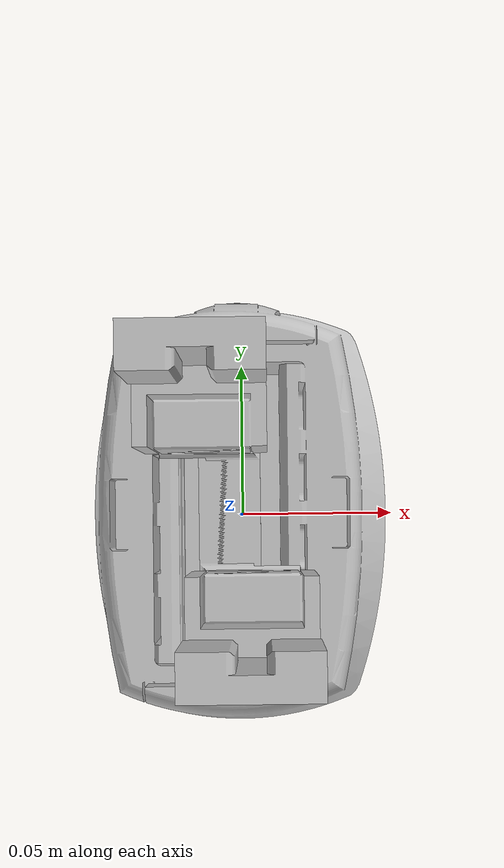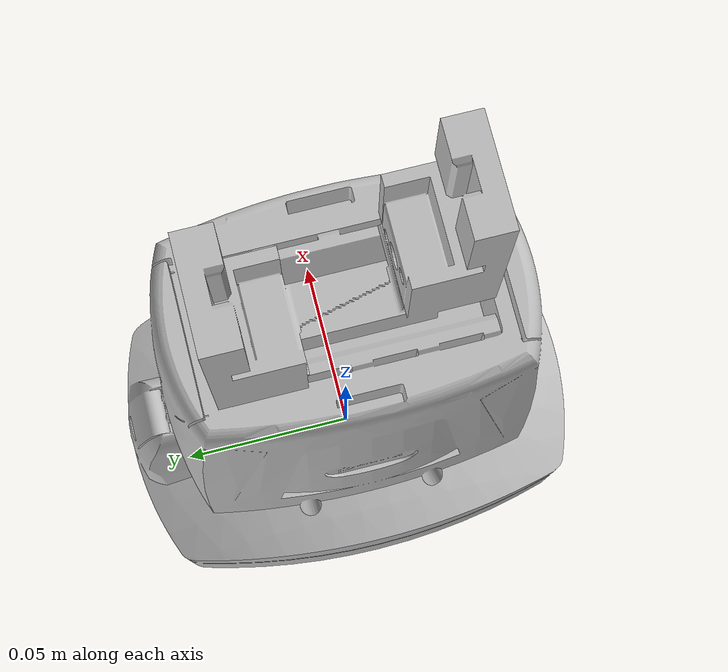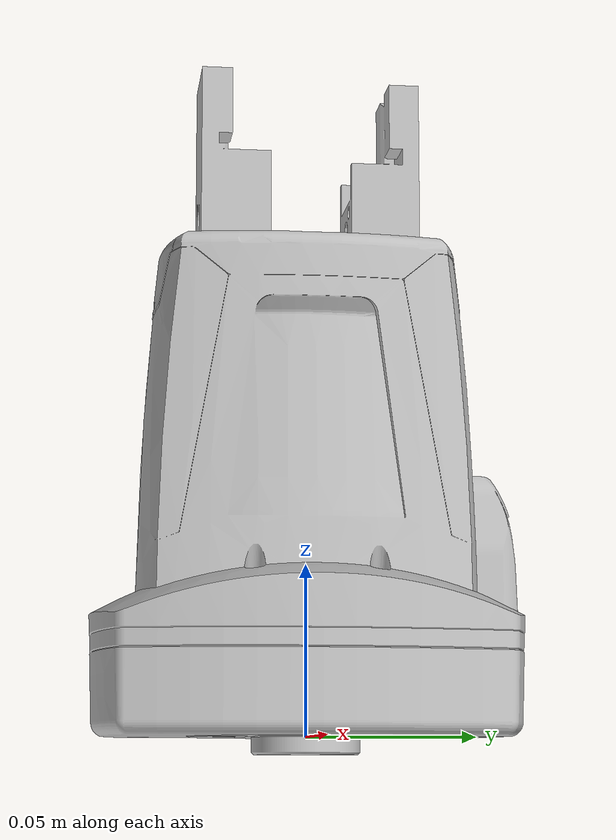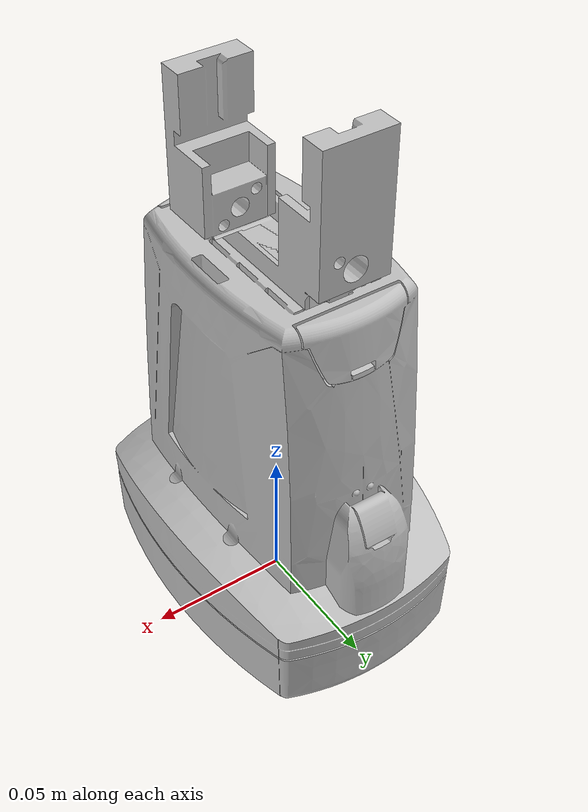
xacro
<?xml version="1.0" encoding="utf-8"?>
<robot name="schunk_egp64_gripper_example" xmlns:xacro="http://www.ros.org/wiki/xacro">

  <!-- Include description for gripper -->
  <xacro:include filename="$(find schunk_egp64_c_description)/urdf/schunk_egp64_c.urdf.xacro" />

  <!-- Instantiate schunk egp64 gripper -->
  <xacro:schunk_egp64_c prefix="c_213_schunk_egp64_gripper_" />

  <link name="world" />

  <joint name="c_213_schunk_egp64_gripper_joint" type="fixed">
    <origin xyz="0 0 0" rpy="0 0 0"/>
    <parent link="world"/>
    <child link="c_213_schunk_egp64_gripper_base_link"/>
  </joint>

</robot>

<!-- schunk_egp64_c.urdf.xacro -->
<robot xmlns:xacro="http://www.ros.org/wiki/xacro"
  name="schunk_egp64_c">
  <xacro:macro name="schunk_egp64_c" params="prefix">
  <link
    name="${prefix}base_link">
    <inertial>
      <origin
        xyz="-3.61315117213839E-06 0.000475618657413579 0.0582790554639852"
        rpy="0 0 0" />
      <mass
        value="0.859553631170882" />
      <inertia
        ixx="0.00191597877651781"
        ixy="4.00042134610088E-08"
        ixz="-5.58160665767195E-07"
        iyy="0.0014804490367899"
        iyz="-3.76488641737709E-06"
        izz="0.00108248723606383" />
    </inertial>
    <visual>
      <origin
        xyz="0 0 0.1442"
        rpy="0 0 1.57" />
      <geometry>
        <mesh
          filename="package://schunk_egp64_c_description/meshes/housing_link.dae" />
      </geometry>
      <material
        name="">
        <color
          rgba="0.752941176470588 0.752941176470588 0.752941176470588 1" />
      </material>
    </visual>
    <collision>
      <origin
        xyz="0 0 0"
        rpy="0 0 0" />
      <geometry>
        <mesh
          filename="package://schunk_egp64_c_description/meshes/housing_link.STL" />
      </geometry>
    </collision>
  </link>
  <link
    name="${prefix}finger_1_link">
    <inertial>
      <origin
        xyz="0.0471876393412815 -0.0018861722133516 0.0111778145392127"
        rpy="0 0 0" />
      <mass
        value="0.0225556705017372" />
      <inertia
        ixx="4.47953728943556E-06"
        ixy="-2.39257098315238E-07"
        ixz="-9.70847442309627E-07"
        iyy="6.3200809979785E-06"
        iyz="-1.84079376871288E-07"
        izz="3.98171824183272E-06" />
    </inertial>
    <visual>
      <origin
        xyz="0 0 0"
        rpy="0 0 0" />
      <geometry>
        <mesh
          filename="package://schunk_egp64_c_description/meshes/finger_1_link.STL" />
      </geometry>
      <material
        name="">
        <color
          rgba="0.752941176470588 0.752941176470588 0.752941176470588 1" />
      </material>
    </visual>
    <collision>
      <origin
        xyz="0 0 0"
        rpy="0 0 0" />
      <geometry>
        <mesh
          filename="package://schunk_egp64_c_description/meshes/finger_1_link.STL" />
      </geometry>
    </collision>
  </link>
  <joint
    name="${prefix}finger_1_joint"
    type="prismatic">
    <origin
      xyz="0 -0.032 0.14395"
      rpy="0 0 1.5707963267949" />
    <parent
      link="${prefix}base_link" />
    <child
      link="${prefix}finger_1_link" />
    <axis
      xyz="-1 0 0" />
    <limit
      lower="0"
      upper="0.032"
      effort="1000"
      velocity="1000" />
  </joint>
  <link
    name="${prefix}finger_2_link">
    <inertial>
      <origin
        xyz="0.0472278553605108 -0.00188617221335157 0.0111778145392127"
        rpy="0 0 0" />
      <mass
        value="0.0225556705017372" />
      <inertia
        ixx="4.47953728943556E-06"
        ixy="-2.3925709831524E-07"
        ixz="-9.70847442309626E-07"
        iyy="6.3200809979785E-06"
        iyz="-1.84079376871297E-07"
        izz="3.98171824183272E-06" />
    </inertial>
    <visual>
      <origin
        xyz="0 0 0"
        rpy="0 0 0" />
      <geometry>
        <mesh
          filename="package://schunk_egp64_c_description/meshes/finger_2_link.STL" />
      </geometry>
      <material
        name="">
        <color
          rgba="0.752941176470588 0.752941176470588 0.752941176470588 1" />
      </material>
    </visual>
    <collision>
      <origin
        xyz="0 0 0"
        rpy="0 0 0" />
      <geometry>
        <mesh
          filename="package://schunk_egp64_c_description/meshes/finger_2_link.STL" />
      </geometry>
    </collision>
  </link>
  <joint
    name="${prefix}finger_2_joint"
    type="prismatic">
    <origin
      xyz="0 0.032 0.14395"
      rpy="0 0 -1.5707963267949" />
    <parent
      link="${prefix}base_link" />
    <child
      link="${prefix}finger_2_link" />
    <axis
      xyz="-1 0 0" />
    <limit
      lower="0"
      upper="0.032"
      effort="1000"
      velocity="1000" />
  </joint>
  </xacro:macro>
</robot>
